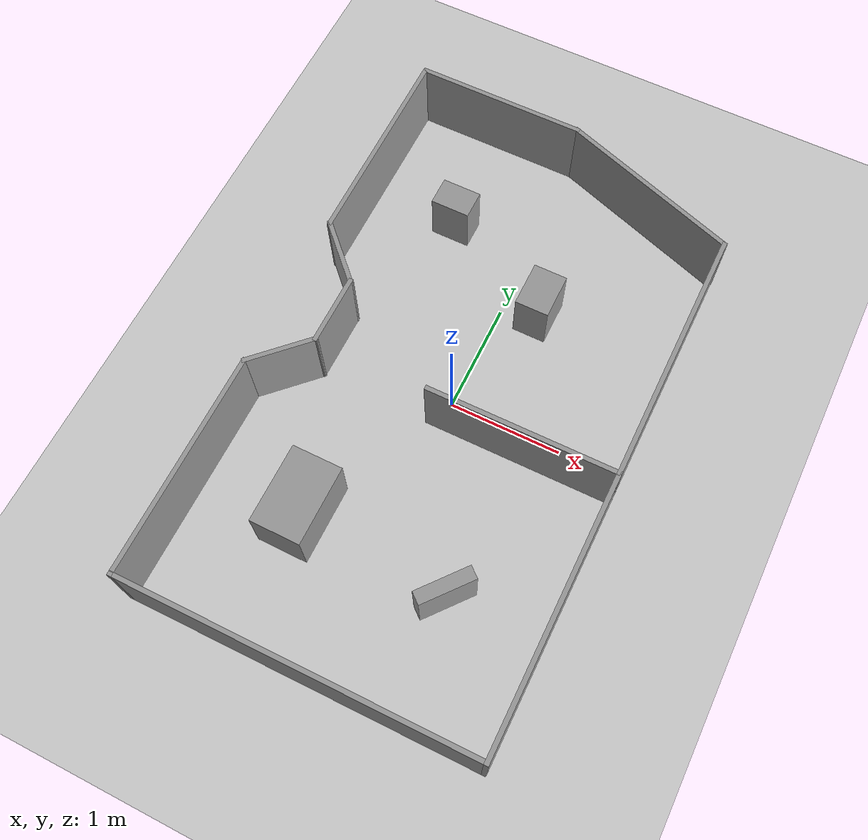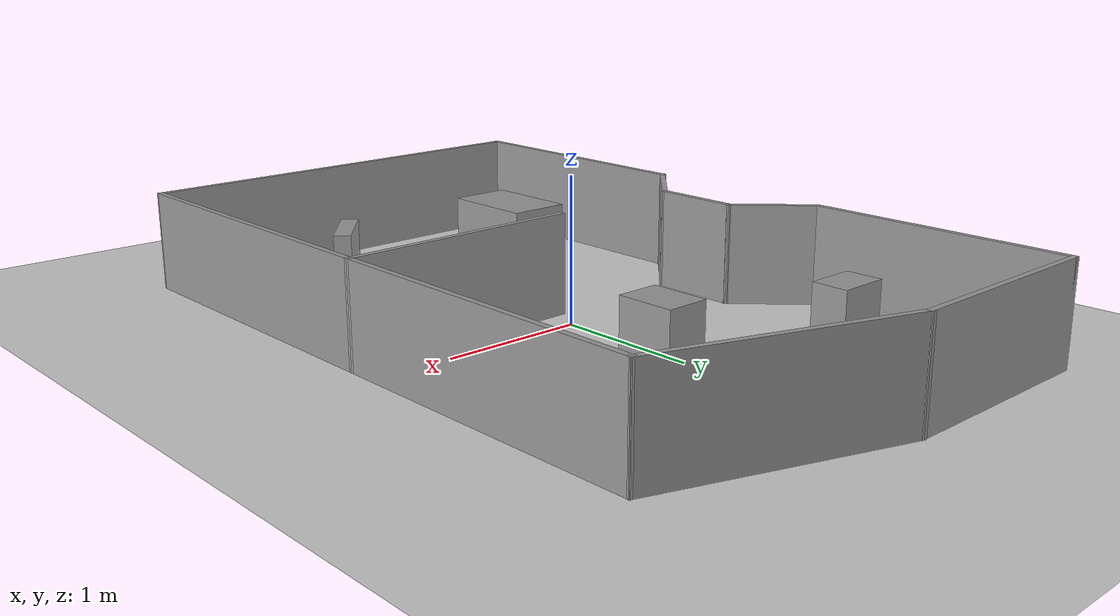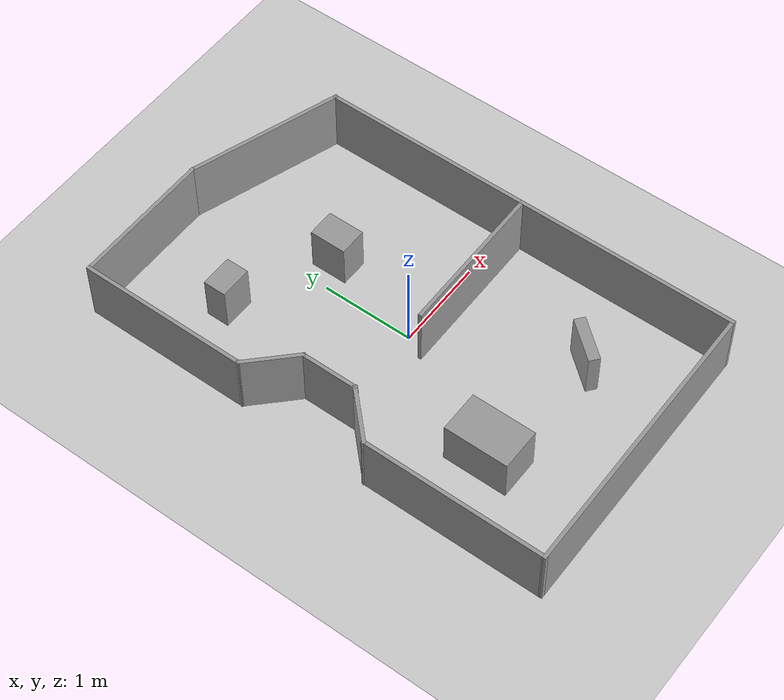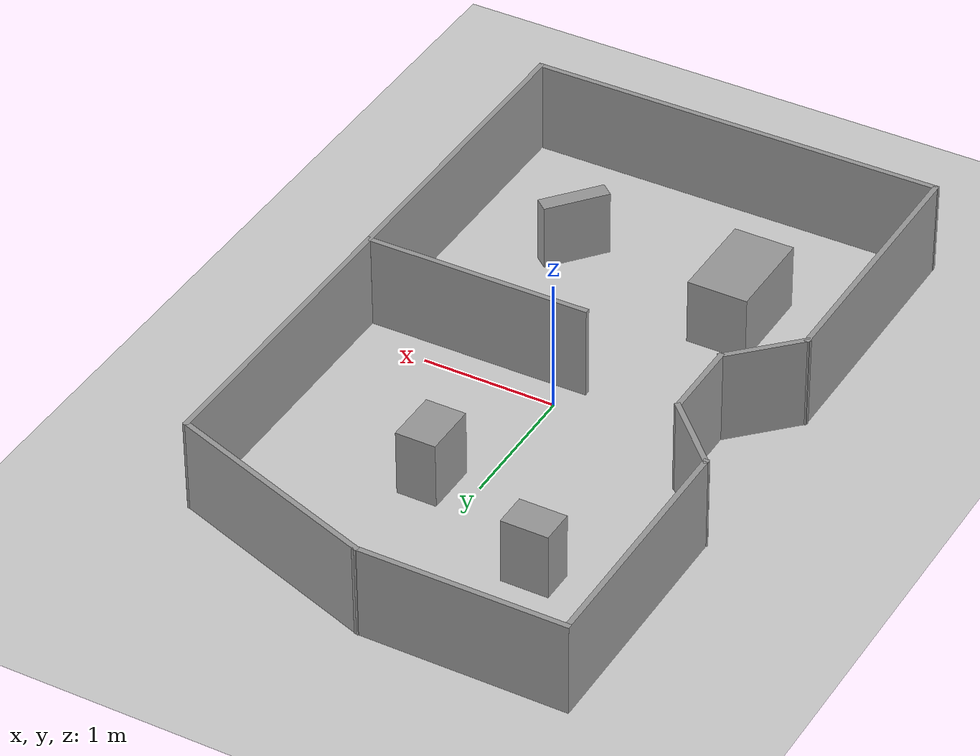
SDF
<sdf version="1.6">
 <world name="default">
  <light name="sun" type="directional">
   <pose>0 0 10 0 -0 0</pose>
   <diffuse>0.8 0.8 0.8 1</diffuse>
   <specular>0.2 0.2 0.2 1</specular>
   <attenuation>
    <range>1000</range>
    <constant>0.9</constant>
    <linear>0.01</linear>
    <quadratic>0.001</quadratic>
   </attenuation>
   <direction>-0.5 0.1 -0.9</direction>
  </light>
  <model name="ground_plane">
   <static>1</static>
   <link name="link">
    <collision name="collision">
     <geometry><plane><normal>0 0 1</normal><size>100 100</size></plane></geometry>
     <surface>
      <contact><collide_bitmask>65535</collide_bitmask></contact>
      <friction><ode><mu>100</mu><mu2>50</mu2></ode></friction>
     </surface>
    </collision>
    <visual name="visual">
     <cast_shadows>0</cast_shadows>
     <geometry><plane><normal>0 0 1</normal><size>100 100</size></plane></geometry>
     <material>
      <script><uri>file://media/materials/scripts/gazebo.material</uri><name>Gazebo/Grey</name></script>
     </material>
    </visual>
   </link>
  </model>
  <gravity>0 0 -9.8</gravity>
  <magnetic_field>6e-06 2.3e-05 -4.2e-05</magnetic_field>
  <atmosphere type="adiabatic"/>
  <physics name="default_physics" default="0" type="ode">
   <max_step_size>0.001</max_step_size>
   <real_time_factor>1</real_time_factor>
   <real_time_update_rate>1000</real_time_update_rate>
  </physics>
  <scene><ambient>0.4 0.4 0.4 1</ambient><background>0.7 0.7 0.7 1</background><shadows>1</shadows></scene>
  <audio><device>default</device></audio>
  <spherical_coordinates>
   <surface_model>EARTH_WGS84</surface_model>
   <latitude_deg>0</latitude_deg>
   <longitude_deg>0</longitude_deg>
   <elevation>0</elevation>
   <heading_deg>0</heading_deg>
  </spherical_coordinates>
  <model name="oldRIF_maze">
   <link name="Wall_12">
    <collision name="Wall_12_Collision">
     <geometry><box><size>1.70169 0.04 0.7</size></box></geometry>
     <pose>0 0 0.35 0 -0 0</pose>
    </collision>
    <visual name="Wall_12_Visual">
     <pose>0 0 0.35 0 -0 0</pose>
     <geometry><box><size>1.70169 0.04 0.7</size></box></geometry>
     <material>
      <script><uri>file://media/materials/scripts/gazebo.material</uri><name>Gazebo/Grey</name></script>
      <ambient>1 1 1 1</ambient>
     </material>
     <meta><layer>0</layer></meta>
    </visual>
    <pose>0.721215 -0.217741 0 0 -0 0.006838</pose>
   </link>
   <link name="Wall_14">
    <collision name="Wall_14_Collision">
     <geometry><box><size>2.42885 0.04 0.7</size></box></geometry>
     <pose>0 0 0.35 0 -0 0</pose>
    </collision>
    <visual name="Wall_14_Visual">
     <pose>0 0 0.35 0 -0 0</pose>
     <geometry><box><size>2.42885 0.04 0.7</size></box></geometry>
     <material>
      <script><uri>file://media/materials/scripts/gazebo.material</uri><name>Gazebo/Grey</name></script>
      <ambient>1 1 1 1</ambient>
     </material>
     <meta><layer>0</layer></meta>
    </visual>
    <pose>1.55204 -1.40606 0 0 -0 -1.5708</pose>
   </link>
   <link name="Wall_16">
    <collision name="Wall_16_Collision">
     <geometry><box><size>3.14099 0.04 0.7</size></box></geometry>
     <pose>0 0 0.35 0 -0 0</pose>
    </collision>
    <visual name="Wall_16_Visual">
     <pose>0 0 0.35 0 -0 0</pose>
     <geometry><box><size>3.14099 0.04 0.7</size></box></geometry>
     <material>
      <script><uri>file://media/materials/scripts/gazebo.material</uri><name>Gazebo/Grey</name></script>
      <ambient>1 1 1 1</ambient>
     </material>
     <meta><layer>0</layer></meta>
    </visual>
    <pose>0.001539 -2.60956 0 0 -0 -3.13547</pose>
   </link>
   <link name="Wall_18">
    <collision name="Wall_18_Collision">
     <geometry><box><size>2.00544 0.04 0.7</size></box></geometry>
     <pose>0 0 0.35 0 -0 0</pose>
    </collision>
    <visual name="Wall_18_Visual">
     <pose>0 0 0.35 0 -0 0</pose>
     <geometry><box><size>2.00544 0.04 0.7</size></box></geometry>
     <material>
      <script><uri>file://media/materials/scripts/gazebo.material</uri><name>Gazebo/Grey</name></script>
      <ambient>1 1 1 1</ambient>
     </material>
     <meta><layer>0</layer></meta>
    </visual>
    <pose>-1.54896 -1.63656 0 0 -0 1.5708</pose>
   </link>
   <link name="Wall_20">
    <collision name="Wall_20_Collision">
     <geometry><box><size>0.64 0.04 0.7</size></box></geometry>
     <pose>0 0 0.35 0 -0 0</pose>
    </collision>
    <visual name="Wall_20_Visual">
     <pose>0 0 0.35 0 -0 0</pose>
     <geometry><box><size>0.64 0.04 0.7</size></box></geometry>
     <material>
      <script><uri>file://media/materials/scripts/gazebo.material</uri><name>Gazebo/Grey</name></script>
      <ambient>1 1 1 1</ambient>
     </material>
     <meta><layer>0</layer></meta>
    </visual>
    <pose>-1.33696 -0.44206 0 0 -0 0.785398</pose>
   </link>
   <link name="Wall_22">
    <collision name="Wall_22_Collision">
     <geometry><box><size>0.64 0.04 0.7</size></box></geometry>
     <pose>0 0 0.35 0 -0 0</pose>
    </collision>
    <visual name="Wall_22_Visual">
     <pose>0 0 0.35 0 -0 0</pose>
     <geometry><box><size>0.64 0.04 0.7</size></box></geometry>
     <material>
      <script><uri>file://media/materials/scripts/gazebo.material</uri><name>Gazebo/Grey</name></script>
      <ambient>1 1 1 1</ambient>
     </material>
     <meta><layer>0</layer></meta>
    </visual>
    <pose>-1.12496 0.06994 0 0 -0 1.5708</pose>
   </link>
   <link name="Wall_24">
    <collision name="Wall_24_Collision">
     <geometry><box><size>0.64 0.04 0.7</size></box></geometry>
     <pose>0 0 0.35 0 -0 0</pose>
    </collision>
    <visual name="Wall_24_Visual">
     <pose>0 0 0.35 0 -0 0</pose>
     <geometry><box><size>0.64 0.04 0.7</size></box></geometry>
     <material>
      <script><uri>file://media/materials/scripts/gazebo.material</uri><name>Gazebo/Grey</name></script>
      <ambient>1 1 1 1</ambient>
     </material>
     <meta><layer>0</layer></meta>
    </visual>
    <pose>-1.33696 0.58194 0 0 -0 2.35619</pose>
   </link>
   <link name="Wall_26">
    <collision name="Wall_26_Collision">
     <geometry><box><size>1.86 0.04 0.7</size></box></geometry>
     <pose>0 0 0.35 0 -0 0</pose>
    </collision>
    <visual name="Wall_26_Visual">
     <pose>0 0 0.35 0 -0 0</pose>
     <geometry><box><size>1.86 0.04 0.7</size></box></geometry>
     <material>
      <script><uri>file://media/materials/scripts/gazebo.material</uri><name>Gazebo/Grey</name></script>
      <ambient>1 1 1 1</ambient>
     </material>
     <meta><layer>0</layer></meta>
    </visual>
    <pose>-1.54896 1.70394 0 0 -0 1.5708</pose>
   </link>
   <link name="Wall_32">
    <collision name="Wall_32_Collision">
     <geometry><box><size>1.55 0.04 0.7</size></box></geometry>
     <pose>0 0 0.35 0 -0 0</pose>
    </collision>
    <visual name="Wall_32_Visual">
     <pose>0 0 0.35 0 -0 0</pose>
     <geometry><box><size>1.55 0.04 0.7</size></box></geometry>
     <material>
      <script><uri>file://media/materials/scripts/gazebo.material</uri><name>Gazebo/Grey</name></script>
      <ambient>1 1 1 1</ambient>
     </material>
     <meta><layer>0</layer></meta>
    </visual>
    <pose>-0.793961 2.61394 0 0 -0 0</pose>
   </link>
   <link name="Wall_35">
    <collision name="Wall_35_Collision">
     <geometry><box><size>2.33 0.04 0.7</size></box></geometry>
     <pose>0 0 0.35 0 -0 0</pose>
    </collision>
    <visual name="Wall_35_Visual">
     <pose>0 0 0.35 0 -0 0</pose>
     <geometry><box><size>2.33 0.04 0.7</size></box></geometry>
     <material>
      <script><uri>file://media/materials/scripts/gazebo.material</uri><name>Gazebo/Grey</name></script>
      <ambient>1 1 1 1</ambient>
     </material>
     <meta><layer>0</layer></meta>
    </visual>
    <pose>1.55204 0.93294 0 0 -0 1.5708</pose>
   </link>
   <link name="Wall_37">
    <collision name="Wall_37_Collision">
     <geometry><box><size>1.71886 0.04 0.7</size></box></geometry>
     <pose>0 0 0.35 0 -0 0</pose>
    </collision>
    <visual name="Wall_37_Visual">
     <pose>0 0 0.35 0 -0 0</pose>
     <geometry><box><size>1.71886 0.04 0.7</size></box></geometry>
     <material>
      <script><uri>file://media/materials/scripts/gazebo.material</uri><name>Gazebo/Grey</name></script>
      <ambient>1 1 1 1</ambient>
     </material>
     <meta><layer>0</layer></meta>
    </visual>
    <pose>0.756539 2.34594 0 0 -0 2.81664</pose>
   </link>
   <static>1</static>
  </model>
  <model name="obstacle1">
   <pose>0.705217 -1.55265 0 0 0 -0.689419</pose>
   <link name="Wall_2">
    <collision name="Wall_2_Collision">
     <geometry><box><size>0.496 0.12 0.5</size></box></geometry>
     <pose>0 0 0.25 0 -0 0</pose>
    </collision>
    <visual name="Wall_2_Visual">
     <pose>0 0 0.25 0 -0 0</pose>
     <geometry><box><size>0.496 0.12 0.5</size></box></geometry>
     <material>
      <script><uri>file://media/materials/scripts/gazebo.material</uri><name>Gazebo/Grey</name></script>
      <ambient>1 1 1 1</ambient>
     </material>
     <meta><layer>0</layer></meta>
    </visual>
    <pose>0 0 0 0 -0 -1.5708</pose>
   </link>
   <static>1</static>
  </model>
  <model name="obstacle2">
   <pose>-0.667227 -1.41563 0 0 -0 0</pose>
   <link name="Wall_4">
    <collision name="Wall_4_Collision">
     <geometry><box><size>0.7 0.45 0.5</size></box></geometry>
     <pose>0 0 0.25 0 -0 0</pose>
    </collision>
    <visual name="Wall_4_Visual">
     <pose>0 0 0.25 0 -0 0</pose>
     <geometry><box><size>0.7 0.45 0.5</size></box></geometry>
     <material>
      <script><uri>file://media/materials/scripts/gazebo.material</uri><name>Gazebo/Grey</name></script>
      <ambient>1 1 1 1</ambient>
     </material>
     <meta><layer>0</layer></meta>
    </visual>
    <pose>0 0 0 0 -0 -1.5708</pose>
   </link>
   <static>1</static>
  </model>
  <model name="obstacle3">
   <pose>-0.751104 1.61479 0 0 -0 0</pose>
   <link name="Wall_8">
    <collision name="Wall_8_Collision">
     <geometry><box><size>0.35 0.25 0.5</size></box></geometry>
     <pose>0 0 0.25 0 -0 0</pose>
    </collision>
    <visual name="Wall_8_Visual">
     <pose>0 0 0.25 0 -0 0</pose>
     <geometry><box><size>0.35 0.25 0.5</size></box></geometry>
     <material>
      <script><uri>file://media/materials/scripts/gazebo.material</uri><name>Gazebo/Grey</name></script>
      <ambient>1 1 1 1</ambient>
     </material>
     <meta><layer>0</layer></meta>
    </visual>
    <pose>-0 0 0 0 -0 3.14159</pose>
   </link>
   <static>1</static>
  </model>
  <model name="obstacle4">
   <pose>0.308087 1.09895 0 0 -0 0</pose>
   <link name="Wall_10">
    <collision name="Wall_10_Collision">
     <geometry><box><size>0.4 0.3 0.5</size></box></geometry>
     <pose>0 0 0.25 0 -0 0</pose>
    </collision>
    <visual name="Wall_10_Visual">
     <pose>0 0 0.25 0 -0 0</pose>
     <geometry><box><size>0.4 0.3 0.5</size></box></geometry>
     <material>
      <script><uri>file://media/materials/scripts/gazebo.material</uri><name>Gazebo/Grey</name></script>
      <ambient>1 1 1 1</ambient>
     </material>
     <meta><layer>0</layer></meta>
    </visual>
    <pose>0 -0 0 0 -0 1.5708</pose>
   </link>
   <static>1</static>
  </model>
 </world>
</sdf>
